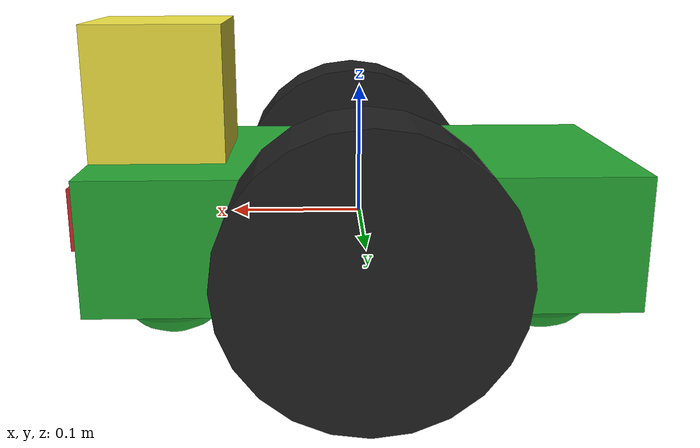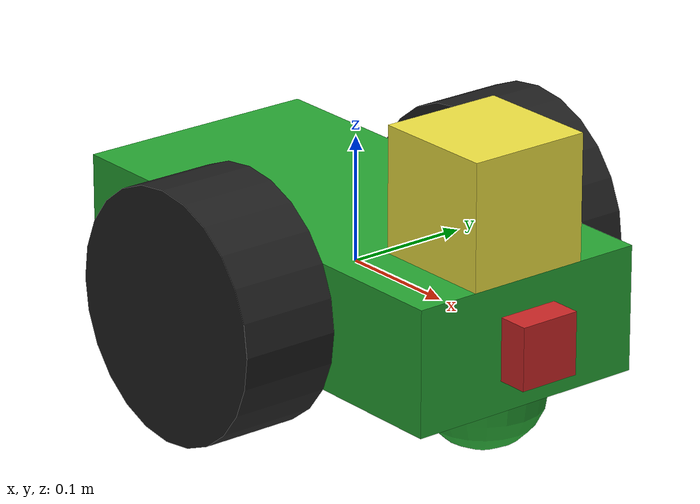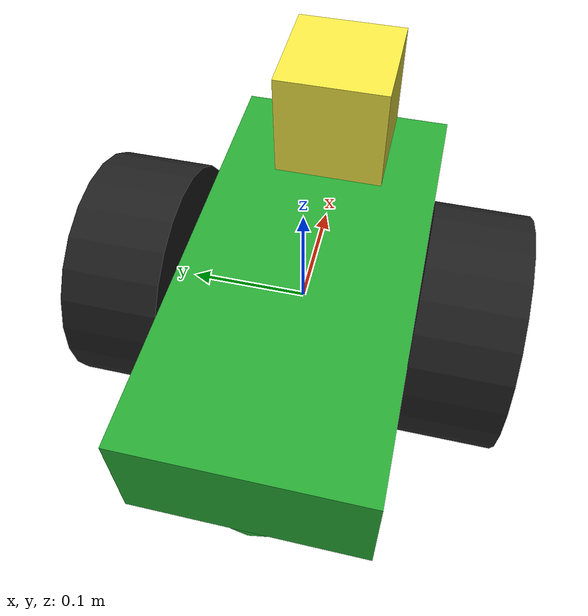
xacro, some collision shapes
<?xml version='1.0'?>

<robot name="my_robot" xmlns:xacro="http://www.ros.org/wiki/xacro">

  <xacro:include filename="$(find my_robot)/urdf/my_robot.gazebo" />

  <link name="robot_footprint"></link>

  <joint name="robot_footprint_joint" type="fixed">
    <origin xyz="0 0 0" rpy="0 0 0" />
    <parent link="robot_footprint"/>
    <child link="chassis" />
  </joint>

  <!--Project 4 RGB-D Camera -->

  <joint name="camera_optical_joint" type="fixed">
    <origin xyz="0 0 0" rpy="-1.5707 0 -1.5707"/>
    <parent link="camera"/>
    <child link="camera_link_optical"/>
  </joint>

  <link name="camera_link_optical">
  </link>

  <joint name="camera_joint" type="fixed">
    <origin xyz="0.2 0 0" rpy="0 0 0" />
    <parent link="chassis"/>
    <child link="camera" />
    <axis xyz="0 1 0"/>
  </joint>

  <link name="camera">
    <inertial>
      <mass value="0.1"/>
      <origin xyz="0 0 0" rpy="0 0 0"/>
      <inertia
        ixx="1e-6" ixy="0.0" ixz="0.0"
        iyy="1e-6" iyz="0.0"
        izz="1e-6"
      />
    </inertial>

    <collision>
      <origin xyz="0 0 0" rpy="0 0 0"/>
      <geometry>
        <box size="0.05 0.05 0.05"/>
      </geometry>
    </collision>

    <visual>
      <origin xyz="0 0 0" rpy="0 0 0"/>
      <geometry>
        <box size="0.05 0.05 0.05"/>
      </geometry>
    </visual>

  </link>

  <gazebo reference="camera">
    <material>Gazebo/Red</material>
  </gazebo>

  <joint name="hokuyo_joint" type="fixed">
    <origin xyz="0.15 0 0.1" rpy="0 0 0" />
    <parent link="chassis"/>
    <child link="hokuyo" />
    <axis xyz="0 1 0"/>
  </joint>

  <link name="hokuyo">
    <inertial>
      <mass value="1e-5"/>
      <origin xyz="0 0 0" rpy="0 0 0"/>
      <inertia
        ixx="1e-6" ixy="0.0" ixz="0.0"
        iyy="1e-6" iyz="0.0"
        izz="1e-6"
      />
    </inertial>

    <collision>
      <origin xyz="0 0 0" rpy="0 0 0"/>
      <geometry>
        <box size="0.1 0.1 0.1"/>
      </geometry>
    </collision>

    <visual>
      <origin xyz="0 0 0" rpy="0 0 0"/>
      <geometry>
        <mesh filename="package://my_robot/meshes/hokuyo.dae"/>
      </geometry>
    </visual>

  </link>

  <joint type="continuous" name="left_wheel_hinge">
    <origin xyz="0 0.14 0" rpy="0 0 0" />
    <parent link="chassis"/>
    <child link="left_wheel" />
    <axis xyz="0 1 0" rpy="0 0 0" />
    <limit effort="10000" velocity="1000" />
    <dynamics damping="1.0" friction="1.0" />
  </joint>

    <link name="left_wheel">
    <inertial>
      <mass value="5"/>
      <origin xyz="0 0 0" rpy="0 1.5707 1.5707"/>
      <inertia
        ixx="0.1" ixy="0.0" ixz="0.0"
        iyy="0.1" iyz="0.0"
        izz="0.1"
      />
    </inertial>

    <collision>
      <origin xyz="0 0 0" rpy="0 1.5707 1.5707"/>
      <geometry>
        <cylinder radius="0.1" length="0.08"/>
      </geometry>
    </collision>

    <visual>
      <origin xyz="0 0 0" rpy="0 1.5707 1.5707"/>
      <geometry>
        <cylinder radius="0.1" length="0.08"/>
      </geometry>
    </visual>

  </link>

  <gazebo reference="left_wheel">
    <material>Gazebo/Black</material>
  </gazebo>

  <joint type="continuous" name="right_wheel_hinge">
    <origin xyz="0 -0.14 0" rpy="0 0 0" />
    <parent link="chassis"/>
    <child link="right_wheel" />
    <axis xyz="0 1 0" rpy="0 0 0" />
    <limit effort="10000" velocity="1000" />
    <dynamics damping="1.0" friction="1.0" />
  </joint>

  <link name="right_wheel">
    <inertial>
      <mass value="5"/>
      <origin xyz="0 0 0" rpy="0 1.5707 1.5707"/>
      <inertia
        ixx="0.1" ixy="0.0" ixz="0.0"
        iyy="0.1" iyz="0.0"
        izz="0.1"
      />
    </inertial>

    <collision>
      <origin xyz="0 0 0" rpy="0 1.5707 1.5707"/>
      <geometry>
        <cylinder radius="0.1" length="0.08"/>
      </geometry>
    </collision>

    <visual>
      <origin xyz="0 0 0" rpy="0 1.5707 1.5707"/>
      <geometry>
        <cylinder radius="0.1" length="0.08"/>
      </geometry>
    </visual>

  </link>

  <gazebo reference="right_wheel">
    <material>Gazebo/Black</material>
  </gazebo>

  <link name='chassis'>
    <pose>0 0 0.1 0 0 0</pose>

    <inertial>
      <mass value="15.0"/>
      <origin xyz="0.0 0 0" rpy=" 0 0 0"/>
      <inertia
          ixx="0.1" ixy="0" ixz="0"
          iyy="0.1" iyz="0"
          izz="0.1"
      />
    </inertial>

    <collision name='collision'>
      <origin xyz="0 0 0" rpy=" 0 0 0"/>
      <geometry>
        <box size=".4 .2 .1"/>
      </geometry>
    </collision>

    <visual name='chassis_visual'>
      <origin xyz="0 0 0" rpy=" 0 0 0"/>
      <geometry>
        <box size=".4 .2 .1"/>
      </geometry>
    </visual>

    <collision name='back_caster_collision'>
      <origin xyz="-0.15 0 -0.05" rpy=" 0 0 0"/>
      <geometry>
        <sphere radius="0.0499"/>
      </geometry>
    </collision>

    <visual name='back_caster_visual'>
      <origin xyz="-0.15 0 -0.05" rpy=" 0 0 0"/>
      <geometry>
        <sphere radius="0.05"/>
      </geometry>
    </visual>

    <collision name='front_caster_collision'>
      <origin xyz="0.15 0 -0.05" rpy=" 0 0 0"/>
      <geometry>
        <sphere radius="0.0499"/>
      </geometry>
    </collision>

    <visual name='front_caster_visual'>
      <origin xyz="0.15 0 -0.05" rpy=" 0 0 0"/>
      <geometry>
        <sphere radius="0.05"/>
      </geometry>
    </visual>

  </link>

  <gazebo reference="chassis">
    <material>Gazebo/Green</material>
  </gazebo>

</robot>
